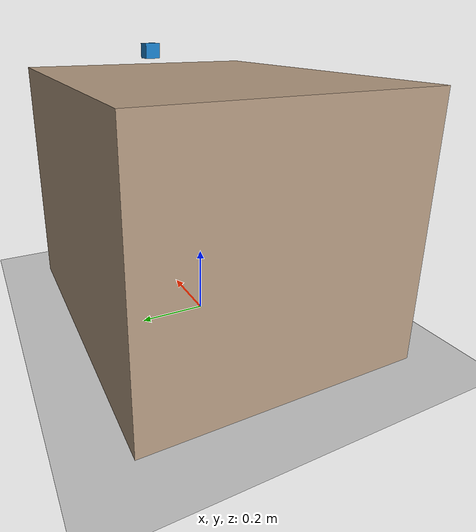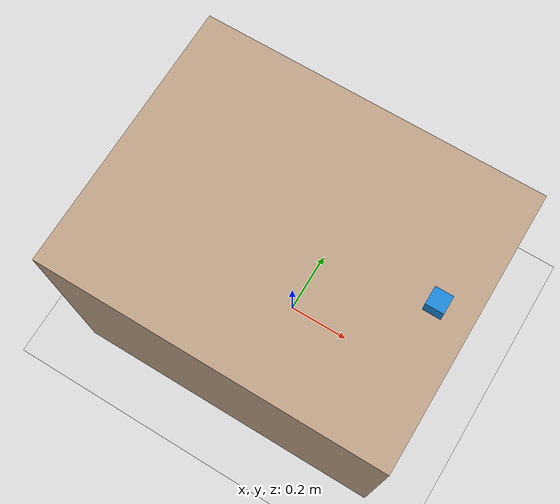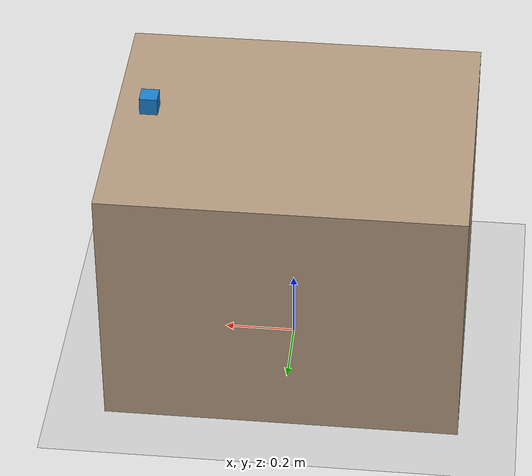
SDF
<sdf version="1.9">
  <world name="lab_world">
    <include>
      <uri>model://ground_plane</uri>
    </include>

    <!-- Table -->
    <model name="table">
      <static>true</static>
      <link name="link">
        <collision name="collision">
          <geometry>
            <box><size>1.0 0.8 0.75</size></box>
          </geometry>
          <pose>0 0 0.375 0 0 0</pose>
        </collision>
        <visual name="visual">
          <geometry>
            <box><size>1.0 0.8 0.75</size></box>
          </geometry>
          <material><ambient>0.7 0.6 0.5 1</ambient></material>
          <pose>0 0 0.375 0 0 0</pose>
        </visual>
      </link>
    </model>

    <!-- Cube object -->
    <model name="cube">
      <static>false</static>
      <link name="link">
        <pose>0.4 0 0.8 0 0 0</pose>
        <collision name="collision">
          <geometry><box><size>0.05 0.05 0.05</size></box></geometry>
        </collision>
        <visual name="visual">
          <geometry><box><size>0.05 0.05 0.05</size></box></geometry>
          <material><ambient>0.1 0.5 0.8 1</ambient></material>
        </visual>
      </link>
    </model>

    <gravity>0 0 -9.8</gravity>
  </world>
</sdf>
